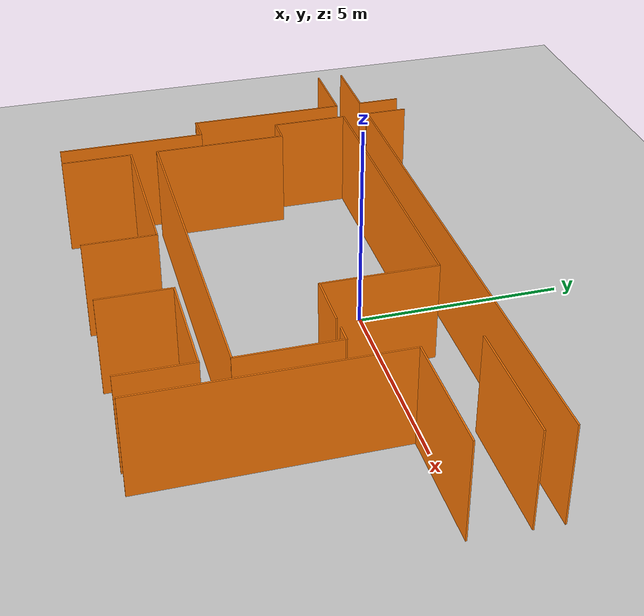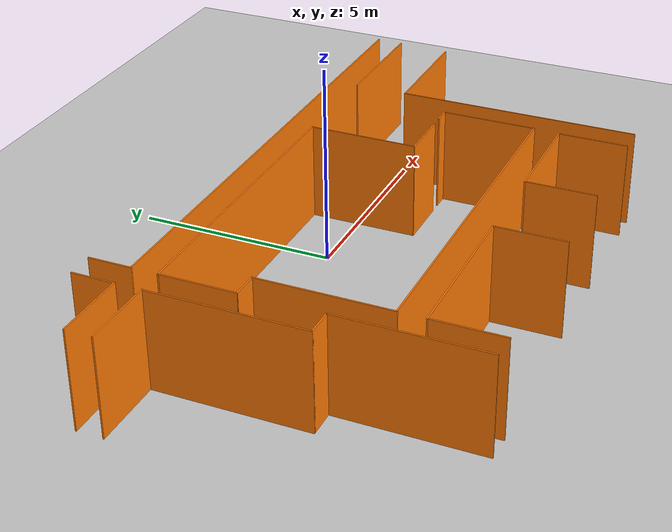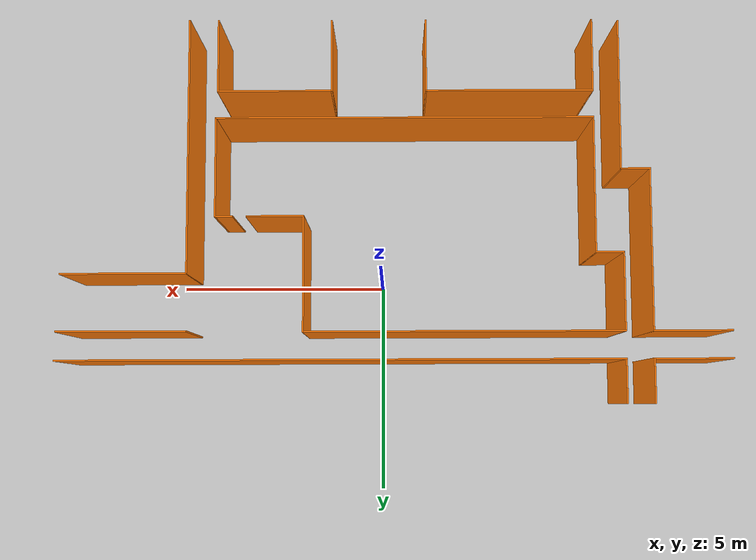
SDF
<sdf version="1.7">
 <world name="default">
  <light name="sun" type="directional">
   <pose>0 0 10 0 -0 0</pose>
   <diffuse>0.8 0.8 0.8 1</diffuse>
   <specular>0.2 0.2 0.2 1</specular>
   <attenuation>
    <range>1000</range>
    <constant>0.9</constant>
    <linear>0.01</linear>
    <quadratic>0.001</quadratic>
   </attenuation>
   <direction>-0.5 0.1 -0.9</direction>
   <spot><inner_angle>0</inner_angle><outer_angle>0</outer_angle><falloff>0</falloff></spot>
  </light>
  <model name="ground_plane">
   <static>1</static>
   <link name="link">
    <collision name="collision">
     <geometry><plane><normal>0 0 1</normal><size>100 100</size></plane></geometry>
     <surface><friction><ode><mu>100</mu><mu2>50</mu2></ode></friction></surface>
    </collision>
    <visual name="visual">
     <cast_shadows>0</cast_shadows>
     <geometry><plane><normal>0 0 1</normal><size>100 100</size></plane></geometry>
     <material>
      <script><uri>file://media/materials/scripts/gazebo.material</uri><name>Gazebo/Grey</name></script>
     </material>
    </visual>
   </link>
  </model>
  <gravity>0 0 -9.8</gravity>
  <magnetic_field>6e-06 2.3e-05 -4.2e-05</magnetic_field>
  <atmosphere type="adiabatic"/>
  <physics type="ode">
   <max_step_size>0.001</max_step_size>
   <real_time_factor>1</real_time_factor>
   <real_time_update_rate>1000</real_time_update_rate>
  </physics>
  <scene><ambient>0.4 0.4 0.4 1</ambient><background>0.7 0.7 0.7 1</background><shadows>1</shadows></scene>
  <audio><device>default</device></audio>
  <spherical_coordinates>
   <surface_model>EARTH_WGS84</surface_model>
   <latitude_deg>0</latitude_deg>
   <longitude_deg>0</longitude_deg>
   <elevation>0</elevation>
   <heading_deg>0</heading_deg>
  </spherical_coordinates>
  <model name="shiyanlou_quarter">
   <pose>-0.266375 -1.6708475 0 0 -0 0</pose>
   <link name="Wall_110">
    <collision name="Wall_110_Collision">
     <geometry><box><size>3.0625 0.0375 2.5</size></box></geometry>
     <pose>0 0 1.25 0 -0 0</pose>
    </collision>
    <visual name="Wall_110_Visual">
     <pose>0 0 1.25 0 -0 0</pose>
     <geometry><box><size>3.0625 0.0375 2.5</size></box></geometry>
     <material>
      <script><uri>file://media/materials/scripts/gazebo.material</uri><name>Gazebo/Grey</name></script>
      <ambient>0.996078 0.47451 0.0196078 1</ambient>
     </material>
     <meta><layer>0</layer></meta>
    </visual>
    <pose>6.375625 2.8731 0 0 -0 0</pose>
   </link>
   <link name="Wall_116">
    <collision name="Wall_116_Collision">
     <geometry><box><size>6.125 0.0375 2.5</size></box></geometry>
     <pose>0 0 1.25 0 -0 0</pose>
    </collision>
    <visual name="Wall_116_Visual">
     <pose>0 0 1.25 0 -0 0</pose>
     <geometry><box><size>6.125 0.0375 2.5</size></box></geometry>
     <material>
      <script><uri>file://media/materials/scripts/gazebo.material</uri><name>Gazebo/Grey</name></script>
      <ambient>0.996078 0.47451 0.0196078 1</ambient>
     </material>
     <meta><layer>0</layer></meta>
    </visual>
    <pose>4.863125 -1.5276525 0 0 -0 1.5708</pose>
   </link>
   <link name="Wall_118">
    <collision name="Wall_118_Collision">
     <geometry><box><size>3 0.0375 2.5</size></box></geometry>
     <pose>0 0 1.25 0 -0 0</pose>
    </collision>
    <visual name="Wall_118_Visual">
     <pose>0 0 1.25 0 -0 0</pose>
     <geometry><box><size>3 0.0375 2.5</size></box></geometry>
     <material>
      <script><uri>file://media/materials/scripts/gazebo.material</uri><name>Gazebo/Grey</name></script>
      <ambient>0.996078 0.47451 0.0196078 1</ambient>
     </material>
     <meta><layer>0</layer></meta>
    </visual>
    <pose>6.344375 1.5160975 0 0 -0 0</pose>
   </link>
   <link name="Wall_122">
    <collision name="Wall_122_Collision">
     <geometry><box><size>1.75 0.0375 2.5</size></box></geometry>
     <pose>0 0 1.25 0 -0 0</pose>
    </collision>
    <visual name="Wall_122_Visual">
     <pose>0 0 1.25 0 -0 0</pose>
     <geometry><box><size>1.75 0.0375 2.5</size></box></geometry>
     <material>
      <script><uri>file://media/materials/scripts/gazebo.material</uri><name>Gazebo/Grey</name></script>
      <ambient>0.996078 0.47451 0.0196078 1</ambient>
     </material>
     <meta><layer>0</layer></meta>
    </visual>
    <pose>1.457875 -3.7079 0 0 -0 -1.5708</pose>
   </link>
   <link name="Wall_126">
    <collision name="Wall_126_Collision">
     <geometry><box><size>2.75 0.0375 2.5</size></box></geometry>
     <pose>0 0 1.25 0 -0 0</pose>
    </collision>
    <visual name="Wall_126_Visual">
     <pose>0 0 1.25 0 -0 0</pose>
     <geometry><box><size>2.75 0.0375 2.5</size></box></geometry>
     <material>
      <script><uri>file://media/materials/scripts/gazebo.material</uri><name>Gazebo/Grey</name></script>
      <ambient>0.996078 0.47451 0.0196078 1</ambient>
     </material>
     <meta><layer>0</layer></meta>
    </visual>
    <pose>2.814125 -2.85165 0 0 -0 0</pose>
   </link>
   <link name="Wall_130">
    <collision name="Wall_130_Collision">
     <geometry><box><size>1.75 0.0375 2.5</size></box></geometry>
     <pose>0 0 1.25 0 -0 0</pose>
    </collision>
    <visual name="Wall_130_Visual">
     <pose>0 0 1.25 0 -0 0</pose>
     <geometry><box><size>1.75 0.0375 2.5</size></box></geometry>
     <material>
      <script><uri>file://media/materials/scripts/gazebo.material</uri><name>Gazebo/Grey</name></script>
      <ambient>0.996078 0.47451 0.0196078 1</ambient>
     </material>
     <meta><layer>0</layer></meta>
    </visual>
    <pose>4.170375 -3.7079 0 0 -0 -1.5708</pose>
   </link>
   <link name="Wall_19">
    <collision name="Wall_19_Collision">
     <geometry><box><size>3.875 0.0375 2.5</size></box></geometry>
     <pose>0 0 1.25 0 -0 0</pose>
    </collision>
    <visual name="Wall_19_Visual">
     <pose>0 0 1.25 0 -0 0</pose>
     <geometry><box><size>3.875 0.0375 2.5</size></box></geometry>
     <material>
      <script><uri>file://media/materials/scripts/gazebo.material</uri><name>Gazebo/Grey</name></script>
      <ambient>0.996078 0.47451 0.0196078 1</ambient>
     </material>
     <meta><layer>0</layer></meta>
    </visual>
    <pose>-6.077625 0.9723475 0 0 -0 -1.5708</pose>
   </link>
   <link name="Wall_26">
    <collision name="Wall_26_Collision">
     <geometry><box><size>1.0625 0.0375 2.5</size></box></geometry>
     <pose>0 0 1.25 0 -0 0</pose>
    </collision>
    <visual name="Wall_26_Visual">
     <pose>0 0 1.25 0 -0 0</pose>
     <geometry><box><size>1.0625 0.0375 2.5</size></box></geometry>
     <material>
      <script><uri>file://media/materials/scripts/gazebo.material</uri><name>Gazebo/Grey</name></script>
      <ambient>0.996078 0.47451 0.0196078 1</ambient>
     </material>
     <meta><layer>0</layer></meta>
    </visual>
    <pose>-6.077625 4.05885 0 0 -0 1.5708</pose>
   </link>
   <link name="Wall_31">
    <collision name="Wall_31_Collision">
     <geometry><box><size>1.06261 0.0375 2.5</size></box></geometry>
     <pose>0 0 1.25 0 -0 0</pose>
    </collision>
    <visual name="Wall_31_Visual">
     <pose>0 0 1.25 0 -0 0</pose>
     <geometry><box><size>1.06261 0.0375 2.5</size></box></geometry>
     <material>
      <script><uri>file://media/materials/scripts/gazebo.material</uri><name>Gazebo/Grey</name></script>
      <ambient>0.996078 0.47451 0.0196078 1</ambient>
     </material>
     <meta><layer>0</layer></meta>
    </visual>
    <pose>-5.422375 4.05885 0 0 -0 -1.5708</pose>
   </link>
   <link name="Wall_33">
    <collision name="Wall_33_Collision">
     <geometry><box><size>1.875 0.0375 2.5</size></box></geometry>
     <pose>0 0 1.25 0 -0 0</pose>
    </collision>
    <visual name="Wall_33_Visual">
     <pose>0 0 1.25 0 -0 0</pose>
     <geometry><box><size>1.875 0.0375 2.5</size></box></geometry>
     <material>
      <script><uri>file://media/materials/scripts/gazebo.material</uri><name>Gazebo/Grey</name></script>
      <ambient>0.996078 0.47451 0.0196078 1</ambient>
     </material>
     <meta><layer>0</layer></meta>
    </visual>
    <pose>-6.996375 3.54635 0 0 -0 3.14159</pose>
   </link>
   <link name="Wall_35">
    <collision name="Wall_35_Collision">
     <geometry><box><size>1.875 0.0375 2.5</size></box></geometry>
     <pose>0 0 1.25 0 -0 0</pose>
    </collision>
    <visual name="Wall_35_Visual">
     <pose>0 0 1.25 0 -0 0</pose>
     <geometry><box><size>1.875 0.0375 2.5</size></box></geometry>
     <material>
      <script><uri>file://media/materials/scripts/gazebo.material</uri><name>Gazebo/Grey</name></script>
      <ambient>0.996078 0.47451 0.0196078 1</ambient>
     </material>
     <meta><layer>0</layer></meta>
    </visual>
    <pose>-6.996375 2.8911 0 0 -0 3.14159</pose>
   </link>
   <link name="Wall_38">
    <collision name="Wall_38_Collision">
     <geometry><box><size>0.6875 0.0375 2.5</size></box></geometry>
     <pose>0 0 1.25 0 -0 0</pose>
    </collision>
    <visual name="Wall_38_Visual">
     <pose>0 0 1.25 0 -0 0</pose>
     <geometry><box><size>0.6875 0.0375 2.5</size></box></geometry>
     <material>
      <script><uri>file://media/materials/scripts/gazebo.material</uri><name>Gazebo/Grey</name></script>
      <ambient>0.996078 0.47451 0.0196078 1</ambient>
     </material>
     <meta><layer>0</layer></meta>
    </visual>
    <pose>-5.092125 1.0410975 0 0 -0 0</pose>
   </link>
   <link name="Wall_42">
    <collision name="Wall_42_Collision">
     <geometry><box><size>0.7195 0.0375 2.5</size></box></geometry>
     <pose>0 0 1.25 0 -0 0</pose>
    </collision>
    <visual name="Wall_42_Visual">
     <pose>0 0 1.25 0 -0 0</pose>
     <geometry><box><size>0.7195 0.0375 2.5</size></box></geometry>
     <material>
      <script><uri>file://media/materials/scripts/gazebo.material</uri><name>Gazebo/Grey</name></script>
      <ambient>0.996078 0.47451 0.0196078 1</ambient>
     </material>
     <meta><layer>0</layer></meta>
    </visual>
    <pose>-5.736625 -0.9464025 0 0 -0 0</pose>
   </link>
   <link name="Wall_44">
    <collision name="Wall_44_Collision">
     <geometry><box><size>3.275 0.0375 2.5</size></box></geometry>
     <pose>0 0 1.25 0 -0 0</pose>
    </collision>
    <visual name="Wall_44_Visual">
     <pose>0 0 1.25 0 -0 0</pose>
     <geometry><box><size>3.275 0.0375 2.5</size></box></geometry>
     <material>
      <script><uri>file://media/materials/scripts/gazebo.material</uri><name>Gazebo/Grey</name></script>
      <ambient>0.996078 0.47451 0.0196078 1</ambient>
     </material>
     <meta><layer>0</layer></meta>
    </visual>
    <pose>-4.767125 -0.5776525 0 0 -0 -1.5708</pose>
   </link>
   <link name="Wall_48">
    <collision name="Wall_48_Collision">
     <geometry><box><size>9.0125 0.0375 2.5</size></box></geometry>
     <pose>0 0 1.25 0 -0 0</pose>
    </collision>
    <visual name="Wall_48_Visual">
     <pose>0 0 1.25 0 -0 0</pose>
     <geometry><box><size>9.0125 0.0375 2.5</size></box></geometry>
     <material>
      <script><uri>file://media/materials/scripts/gazebo.material</uri><name>Gazebo/Grey</name></script>
      <ambient>0.996078 0.47451 0.0196078 1</ambient>
     </material>
     <meta><layer>0</layer></meta>
    </visual>
    <pose>-0.279625 -2.1964025 0 0 -0 0</pose>
   </link>
   <link name="Wall_5">
    <collision name="Wall_5_Collision">
     <geometry><box><size>13.375 0.0375 2.5</size></box></geometry>
     <pose>0 0 1.25 0 -0 0</pose>
    </collision>
    <visual name="Wall_5_Visual">
     <pose>0 0 1.25 0 -0 0</pose>
     <geometry><box><size>13.375 0.0375 2.5</size></box></geometry>
     <material>
      <script><uri>file://media/materials/scripts/gazebo.material</uri><name>Gazebo/Grey</name></script>
      <ambient>0.996078 0.47451 0.0196078 1</ambient>
     </material>
     <meta><layer>0</layer></meta>
    </visual>
    <pose>1.246375 3.54635 0 0 -0 0</pose>
   </link>
   <link name="Wall_52">
    <collision name="Wall_52_Collision">
     <geometry><box><size>4.0125 0.0375 2.5</size></box></geometry>
     <pose>0 0 1.25 0 -0 0</pose>
    </collision>
    <visual name="Wall_52_Visual">
     <pose>0 0 1.25 0 -0 0</pose>
     <geometry><box><size>4.0125 0.0375 2.5</size></box></geometry>
     <material>
      <script><uri>file://media/materials/scripts/gazebo.material</uri><name>Gazebo/Grey</name></script>
      <ambient>0.996078 0.47451 0.0196078 1</ambient>
     </material>
     <meta><layer>0</layer></meta>
    </visual>
    <pose>-2.779625 -2.85165 0 0 -0 0</pose>
   </link>
   <link name="Wall_54">
    <collision name="Wall_54_Collision">
     <geometry><box><size>1.75 0.0375 2.5</size></box></geometry>
     <pose>0 0 1.25 0 -0 0</pose>
    </collision>
    <visual name="Wall_54_Visual">
     <pose>0 0 1.25 0 -0 0</pose>
     <geometry><box><size>1.75 0.0375 2.5</size></box></geometry>
     <material>
      <script><uri>file://media/materials/scripts/gazebo.material</uri><name>Gazebo/Grey</name></script>
      <ambient>0.996078 0.47451 0.0196078 1</ambient>
     </material>
     <meta><layer>0</layer></meta>
    </visual>
    <pose>-4.767125 -3.7079 0 0 -0 -1.5708</pose>
   </link>
   <link name="Wall_60">
    <collision name="Wall_60_Collision">
     <geometry><box><size>3.625 0.0375 2.5</size></box></geometry>
     <pose>0 0 1.25 0 -0 0</pose>
    </collision>
    <visual name="Wall_60_Visual">
     <pose>0 0 1.25 0 -0 0</pose>
     <geometry><box><size>3.625 0.0375 2.5</size></box></geometry>
     <material>
      <script><uri>file://media/materials/scripts/gazebo.material</uri><name>Gazebo/Grey</name></script>
      <ambient>0.996078 0.47451 0.0196078 1</ambient>
     </material>
     <meta><layer>0</layer></meta>
    </visual>
    <pose>-5.395625 -2.74015 0 0 -0 -1.5708</pose>
   </link>
   <link name="Wall_62">
    <collision name="Wall_62_Collision">
     <geometry><box><size>1.75 0.0375 2.5</size></box></geometry>
     <pose>0 0 1.25 0 -0 0</pose>
    </collision>
    <visual name="Wall_62_Visual">
     <pose>0 0 1.25 0 -0 0</pose>
     <geometry><box><size>1.75 0.0375 2.5</size></box></geometry>
     <material>
      <script><uri>file://media/materials/scripts/gazebo.material</uri><name>Gazebo/Grey</name></script>
      <ambient>0.996078 0.47451 0.0196078 1</ambient>
     </material>
     <meta><layer>0</layer></meta>
    </visual>
    <pose>-0.792125 -3.7079 0 0 -0 -1.5708</pose>
   </link>
   <link name="Wall_70">
    <collision name="Wall_70_Collision">
     <geometry><box><size>2.4 0.0375 2.5</size></box></geometry>
     <pose>0 0 1.25 0 -0 0</pose>
    </collision>
    <visual name="Wall_70_Visual">
     <pose>0 0 1.25 0 -0 0</pose>
     <geometry><box><size>2.4 0.0375 2.5</size></box></geometry>
     <material>
      <script><uri>file://media/materials/scripts/gazebo.material</uri><name>Gazebo/Grey</name></script>
      <ambient>0.996078 0.47451 0.0196078 1</ambient>
     </material>
     <meta><layer>0</layer></meta>
    </visual>
    <pose>4.207875 -1.0151525 0 0 -0 1.5708</pose>
   </link>
   <link name="Wall_72">
    <collision name="Wall_72_Collision">
     <geometry><box><size>0.4375 0.0375 2.5</size></box></geometry>
     <pose>0 0 1.25 0 -0 0</pose>
    </collision>
    <visual name="Wall_72_Visual">
     <pose>0 0 1.25 0 -0 0</pose>
     <geometry><box><size>0.4375 0.0375 2.5</size></box></geometry>
     <material>
      <script><uri>file://media/materials/scripts/gazebo.material</uri><name>Gazebo/Grey</name></script>
      <ambient>0.996078 0.47451 0.0196078 1</ambient>
     </material>
     <meta><layer>0</layer></meta>
    </visual>
    <pose>4.007875 0.1660975 0 0 -0 3.14159</pose>
   </link>
   <link name="Wall_81">
    <collision name="Wall_81_Collision">
     <geometry><box><size>1.375 0.0375 2.5</size></box></geometry>
     <pose>0 0 1.25 0 -0 0</pose>
    </collision>
    <visual name="Wall_81_Visual">
     <pose>0 0 1.25 0 -0 0</pose>
     <geometry><box><size>1.375 0.0375 2.5</size></box></geometry>
     <material>
      <script><uri>file://media/materials/scripts/gazebo.material</uri><name>Gazebo/Grey</name></script>
      <ambient>0.996078 0.47451 0.0196078 1</ambient>
     </material>
     <meta><layer>0</layer></meta>
    </visual>
    <pose>2.791625 0.1660975 0 0 -0 3.14159</pose>
   </link>
   <link name="Wall_83">
    <collision name="Wall_83_Collision">
     <geometry><box><size>2.75 0.0375 2.5</size></box></geometry>
     <pose>0 0 1.25 0 -0 0</pose>
    </collision>
    <visual name="Wall_83_Visual">
     <pose>0 0 1.25 0 -0 0</pose>
     <geometry><box><size>2.75 0.0375 2.5</size></box></geometry>
     <material>
      <script><uri>file://media/materials/scripts/gazebo.material</uri><name>Gazebo/Grey</name></script>
      <ambient>0.996078 0.47451 0.0196078 1</ambient>
     </material>
     <meta><layer>0</layer></meta>
    </visual>
    <pose>2.120625 1.5348475 0 0 -0 -1.5708</pose>
   </link>
   <link name="Wall_87">
    <collision name="Wall_87_Collision">
     <geometry><box><size>1.8750275 0.0375 2.5</size></box></geometry>
     <pose>0 0 1.25 0 -0 0</pose>
    </collision>
    <visual name="Wall_87_Visual">
     <pose>0 0 1.25 0 -0 0</pose>
     <geometry><box><size>1.8750275 0.0375 2.5</size></box></geometry>
     <material>
      <script><uri>file://media/materials/scripts/gazebo.material</uri><name>Gazebo/Grey</name></script>
      <ambient>0.996078 0.47451 0.0196078 1</ambient>
     </material>
     <meta><layer>0</layer></meta>
    </visual>
    <pose>-5.422375 1.9723475 0 0 -0 -1.5708</pose>
   </link>
   <link name="Wall_91">
    <collision name="Wall_91_Collision">
     <geometry><box><size>7.574125 0.0375 2.5</size></box></geometry>
     <pose>0 0 1.25 0 -0 0</pose>
    </collision>
    <visual name="Wall_91_Visual">
     <pose>0 0 1.25 0 -0 0</pose>
     <geometry><box><size>7.574125 0.0375 2.5</size></box></geometry>
     <material>
      <script><uri>file://media/materials/scripts/gazebo.material</uri><name>Gazebo/Grey</name></script>
      <ambient>0.996078 0.47451 0.0196078 1</ambient>
     </material>
     <meta><layer>0</layer></meta>
    </visual>
    <pose>-1.65406 2.8911 0 0 -0 0</pose>
   </link>
   <static>1</static>
  </model>
 </world>
</sdf>
